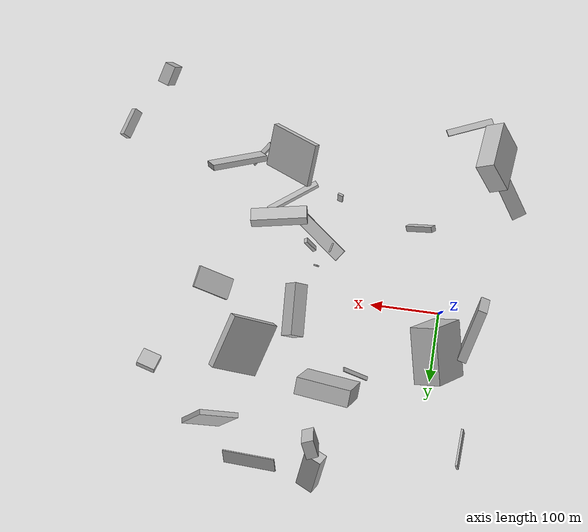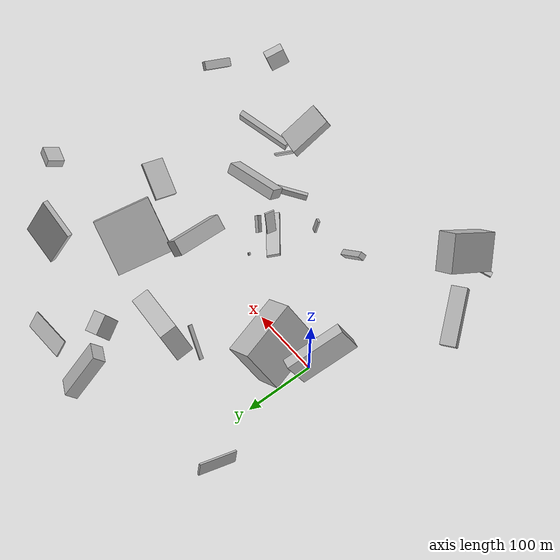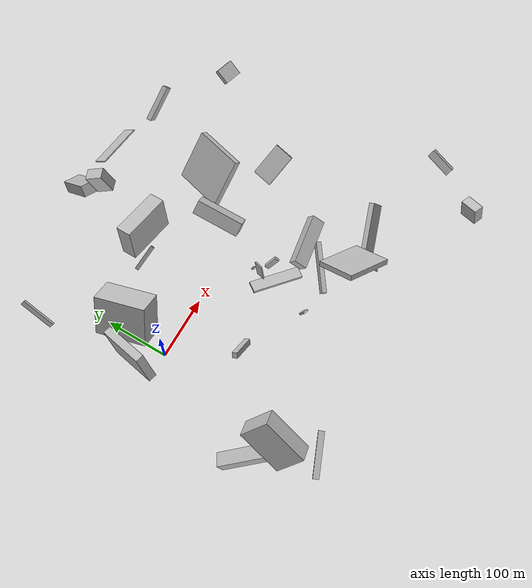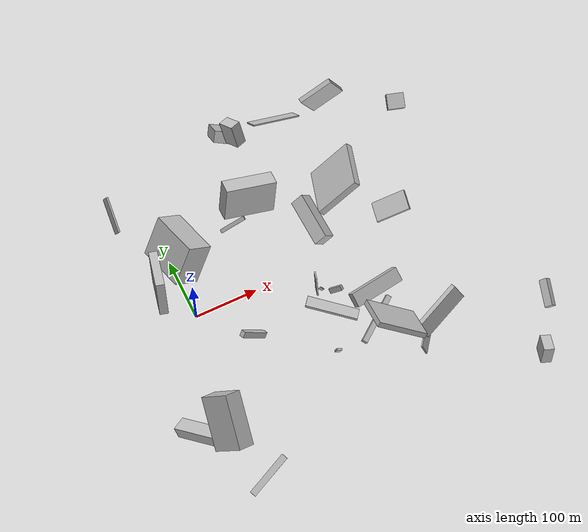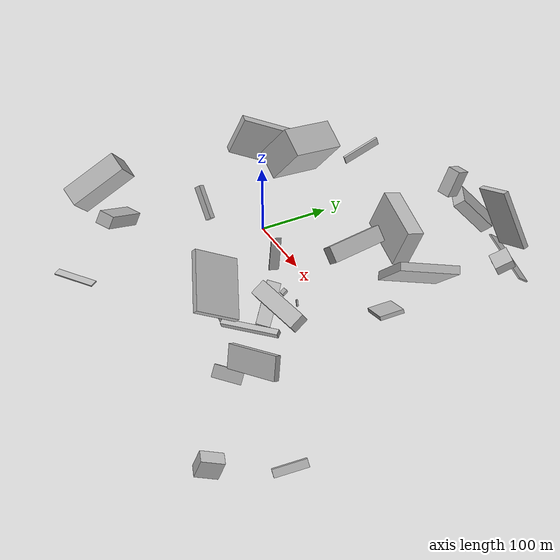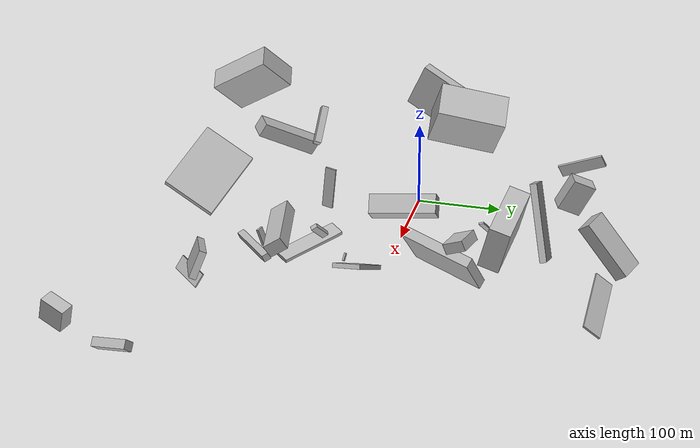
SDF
<sdf version="1.6">
 <world name="default">
  <scene>
   <sky><clouds><speed>12</speed></clouds></sky>
   <ambient>0.4 0.4 0.4 1</ambient>
   <background>0.7 0.7 0.7 1</background>
   <shadows>1</shadows>
  </scene>
  <gravity>0 0 -9.8066</gravity>
  <magnetic_field>6e-06 2.3e-05 -4.2e-05</magnetic_field>
  <physics default="0" name="default_physics" type="ode">
   <ode>
    <solver>
     <type>quick</type>
     <iters>10</iters>
     <sor>1.0</sor>
     <use_dynamic_moi_rescaling>0</use_dynamic_moi_rescaling>
    </solver>
    <constraints>
     <cfm>0</cfm>
     <erp>0.2</erp>
     <contact_max_correcting_vel>100</contact_max_correcting_vel>
     <contact_surface_layer>0.001</contact_surface_layer>
    </constraints>
   </ode>
   <max_step_size>0.004</max_step_size>
   <real_time_factor>1</real_time_factor>
   <real_time_update_rate>250</real_time_update_rate>
  </physics>
  <light name="sun" type="directional">
   <pose>0 0 10 0 0 0</pose>
   <diffuse>0.8 0.8 0.8 1</diffuse>
   <specular>0.2 0.2 0.2 1</specular>
   <attenuation>
    <range>1000</range>
    <constant>0.9</constant>
    <linear>0.01</linear>
    <quadratic>0.001</quadratic>
   </attenuation>
   <direction>-0.5 0.1 -0.9</direction>
  </light>
  <model name="building_1">
   <static>0</static>
   <pose>-46.80721612134095 10.588466715862722 92.22088988094995 -0.43987139113227713 0.026669228112669332 -0.24792264438074518</pose>
   <link name="link">
    <gravity>0</gravity>
    <pose>0 0 27.0 0 0 0</pose>
    <collision name="collision"><geometry><box><size>13 80 54</size></box></geometry></collision>
    <visual name="visual">
     <cast_shadows>0</cast_shadows>
     <geometry><box><size>13 80 54</size></box></geometry>
     <material>
      <script>
       <uri>model://HANNAS_wall/materials/scripts</uri>
       <uri>model://HANNAS_wall/materials/textures</uri>
       <name>vrc/HANNAS_wall</name>
      </script>
     </material>
    </visual>
   </link>
  </model>
  <model name="building_2">
   <static>0</static>
   <pose>142.31159038892437 251.97620054507857 50.635752170744944 -1.9255413461020572 -0.8690256944154202 -1.7264265356310464</pose>
   <link name="link">
    <gravity>0</gravity>
    <pose>0 0 13.5 0 0 0</pose>
    <collision name="collision"><geometry><box><size>71 18 27</size></box></geometry></collision>
    <visual name="visual">
     <cast_shadows>0</cast_shadows>
     <geometry><box><size>71 18 27</size></box></geometry>
     <material>
      <script>
       <uri>model://HANNAS_wall/materials/scripts</uri>
       <uri>model://HANNAS_wall/materials/textures</uri>
       <name>vrc/HANNAS_wall</name>
      </script>
     </material>
    </visual>
   </link>
  </model>
  <model name="building_3">
   <static>0</static>
   <pose>-57.79887685216417 -207.33828644951114 104.13392132256574 0.6542090987517558 0.5254659813759628 0.20850458514615336</pose>
   <link name="link">
    <gravity>0</gravity>
    <pose>0 0 26.0 0 0 0</pose>
    <collision name="collision"><geometry><box><size>27 80 52</size></box></geometry></collision>
    <visual name="visual">
     <cast_shadows>0</cast_shadows>
     <geometry><box><size>27 80 52</size></box></geometry>
     <material>
      <script>
       <uri>model://HANNAS_wall/materials/scripts</uri>
       <uri>model://HANNAS_wall/materials/textures</uri>
       <name>vrc/HANNAS_wall</name>
      </script>
     </material>
    </visual>
   </link>
  </model>
  <model name="building_4">
   <static>0</static>
   <pose>316.8078931884104 -172.51256144888418 61.405261625652244 1.1476230024784764 -0.2855874906496783 0.35964390490377746</pose>
   <link name="link">
    <gravity>0</gravity>
    <pose>0 0 4.0 0 0 0</pose>
    <collision name="collision"><geometry><box><size>80 31 8</size></box></geometry></collision>
    <visual name="visual">
     <cast_shadows>0</cast_shadows>
     <geometry><box><size>80 31 8</size></box></geometry>
     <material>
      <script>
       <uri>model://HANNAS_wall/materials/scripts</uri>
       <uri>model://HANNAS_wall/materials/textures</uri>
       <name>vrc/HANNAS_wall</name>
      </script>
     </material>
    </visual>
   </link>
  </model>
  <model name="building_5">
   <static>0</static>
   <pose>-5.066339286344846 96.37820893813016 108.68357692366286 1.2110102681719987 -0.9100155124347925 0.5088106340080577</pose>
   <link name="link">
    <gravity>0</gravity>
    <pose>0 0 40.0 0 0 0</pose>
    <collision name="collision"><geometry><box><size>64 41 80</size></box></geometry></collision>
    <visual name="visual">
     <cast_shadows>0</cast_shadows>
     <geometry><box><size>64 41 80</size></box></geometry>
     <material>
      <script>
       <uri>model://HANNAS_wall/materials/scripts</uri>
       <uri>model://HANNAS_wall/materials/textures</uri>
       <name>vrc/HANNAS_wall</name>
      </script>
     </material>
    </visual>
   </link>
  </model>
  <model name="building_6">
   <static>0</static>
   <pose>246.05078455840516 -100.04797789841032 66.17554096737271 -0.5837933246982844 -0.0746034739771885 -2.966680083458404</pose>
   <link name="link">
    <gravity>0</gravity>
    <pose>0 0 7.5 0 0 0</pose>
    <collision name="collision"><geometry><box><size>80 22 15</size></box></geometry></collision>
    <visual name="visual">
     <cast_shadows>0</cast_shadows>
     <geometry><box><size>80 22 15</size></box></geometry>
     <material>
      <script>
       <uri>model://HANNAS_wall/materials/scripts</uri>
       <uri>model://HANNAS_wall/materials/textures</uri>
       <name>vrc/HANNAS_wall</name>
      </script>
     </material>
    </visual>
   </link>
  </model>
  <model name="building_7">
   <static>0</static>
   <pose>328.87745482677224 18.039925181907453 82.87695471194493 1.7232631047173461 -0.4511385530592684 -0.2373014897774044</pose>
   <link name="link">
    <gravity>0</gravity>
    <pose>0 0 15.5 0 0 0</pose>
    <collision name="collision"><geometry><box><size>54 5 31</size></box></geometry></collision>
    <visual name="visual">
     <cast_shadows>0</cast_shadows>
     <geometry><box><size>54 5 31</size></box></geometry>
     <material>
      <script>
       <uri>model://HANNAS_wall/materials/scripts</uri>
       <uri>model://HANNAS_wall/materials/textures</uri>
       <name>vrc/HANNAS_wall</name>
      </script>
     </material>
    </visual>
   </link>
  </model>
  <model name="building_8">
   <static>0</static>
   <pose>247.04402131850247 238.51956905938542 30.109641318971057 2.295971402490959 -0.29654122966167695 3.110433619250768</pose>
   <link name="link">
    <gravity>0</gravity>
    <pose>0 0 11.5 0 0 0</pose>
    <collision name="collision"><geometry><box><size>80 2 23</size></box></geometry></collision>
    <visual name="visual">
     <cast_shadows>0</cast_shadows>
     <geometry><box><size>80 2 23</size></box></geometry>
     <material>
      <script>
       <uri>model://HANNAS_wall/materials/scripts</uri>
       <uri>model://HANNAS_wall/materials/textures</uri>
       <name>vrc/HANNAS_wall</name>
      </script>
     </material>
    </visual>
   </link>
  </model>
  <model name="building_9">
   <static>0</static>
   <pose>-65.68176808293673 -181.11129000880922 33.12075731304242 1.2309533929170797 1.041602355967249 -1.3080577364899955</pose>
   <link name="link">
    <gravity>0</gravity>
    <pose>0 0 11.0 0 0 0</pose>
    <collision name="collision"><geometry><box><size>18 80 22</size></box></geometry></collision>
    <visual name="visual">
     <cast_shadows>0</cast_shadows>
     <geometry><box><size>18 80 22</size></box></geometry>
     <material>
      <script>
       <uri>model://HANNAS_wall/materials/scripts</uri>
       <uri>model://HANNAS_wall/materials/textures</uri>
       <name>vrc/HANNAS_wall</name>
      </script>
     </material>
    </visual>
   </link>
  </model>
  <model name="building_10">
   <static>0</static>
   <pose>161.10101889698583 -147.77308781394527 16.45962884631545 1.982196891521223 1.2431583295341242 1.6237564176466603</pose>
   <link name="link">
    <gravity>0</gravity>
    <pose>0 0 4.0 0 0 0</pose>
    <collision name="collision"><geometry><box><size>20 3 8</size></box></geometry></collision>
    <visual name="visual">
     <cast_shadows>0</cast_shadows>
     <geometry><box><size>20 3 8</size></box></geometry>
     <material>
      <script>
       <uri>model://HANNAS_wall/materials/scripts</uri>
       <uri>model://HANNAS_wall/materials/textures</uri>
       <name>vrc/HANNAS_wall</name>
      </script>
     </material>
    </visual>
   </link>
  </model>
  <model name="building_11">
   <static>0</static>
   <pose>198.5870796568022 26.69731536258423 89.3029721782046 0.15196664321596404 0.8655551245087347 0.16730386341383394</pose>
   <link name="link">
    <gravity>0</gravity>
    <pose>0 0 11.0 0 0 0</pose>
    <collision name="collision"><geometry><box><size>22 74 22</size></box></geometry></collision>
    <visual name="visual">
     <cast_shadows>0</cast_shadows>
     <geometry><box><size>22 74 22</size></box></geometry>
     <material>
      <script>
       <uri>model://HANNAS_wall/materials/scripts</uri>
       <uri>model://HANNAS_wall/materials/textures</uri>
       <name>vrc/HANNAS_wall</name>
      </script>
     </material>
    </visual>
   </link>
  </model>
  <model name="building_12">
   <static>0</static>
   <pose>-54.306405719378574 192.70829339785587 38.09220718453941 0.2875720602153393 -0.38816152536484055 1.4890608982021234</pose>
   <link name="link">
    <gravity>0</gravity>
    <pose>0 0 8.0 0 0 0</pose>
    <collision name="collision"><geometry><box><size>56 3 16</size></box></geometry></collision>
    <visual name="visual">
     <cast_shadows>0</cast_shadows>
     <geometry><box><size>56 3 16</size></box></geometry>
     <material>
      <script>
       <uri>model://HANNAS_wall/materials/scripts</uri>
       <uri>model://HANNAS_wall/materials/textures</uri>
       <name>vrc/HANNAS_wall</name>
      </script>
     </material>
    </visual>
   </link>
  </model>
  <model name="building_13">
   <static>0</static>
   <pose>109.4490291292752 100.57884778326897 28.608127708474065 -1.1418060829561307 -0.6938429693731477 -0.2476260368258135</pose>
   <link name="link">
    <gravity>0</gravity>
    <pose>0 0 3.0 0 0 0</pose>
    <collision name="collision"><geometry><box><size>48 2 6</size></box></geometry></collision>
    <visual name="visual">
     <cast_shadows>0</cast_shadows>
     <geometry><box><size>48 2 6</size></box></geometry>
     <material>
      <script>
       <uri>model://HANNAS_wall/materials/scripts</uri>
       <uri>model://HANNAS_wall/materials/textures</uri>
       <name>vrc/HANNAS_wall</name>
      </script>
     </material>
    </visual>
   </link>
  </model>
  <model name="building_14">
   <static>0</static>
   <pose>169.38872802934813 -61.86798264336912 88.4431988284243 -0.265693828638341 -1.4807381912500408 1.5864957661809933</pose>
   <link name="link">
    <gravity>0</gravity>
    <pose>0 0 6.5 0 0 0</pose>
    <collision name="collision"><geometry><box><size>48 2 13</size></box></geometry></collision>
    <visual name="visual">
     <cast_shadows>0</cast_shadows>
     <geometry><box><size>48 2 13</size></box></geometry>
     <material>
      <script>
       <uri>model://HANNAS_wall/materials/scripts</uri>
       <uri>model://HANNAS_wall/materials/textures</uri>
       <name>vrc/HANNAS_wall</name>
      </script>
     </material>
    </visual>
   </link>
  </model>
  <model name="building_15">
   <static>0</static>
   <pose>315.0087030404442 198.1852875522726 107.09452630076984 0.2145039341327754 -0.389175598924471 0.02817129921107881</pose>
   <link name="link">
    <gravity>0</gravity>
    <pose>0 0 40.0 0 0 0</pose>
    <collision name="collision"><geometry><box><size>54 7 80</size></box></geometry></collision>
    <visual name="visual">
     <cast_shadows>0</cast_shadows>
     <geometry><box><size>54 7 80</size></box></geometry>
     <material>
      <script>
       <uri>model://HANNAS_wall/materials/scripts</uri>
       <uri>model://HANNAS_wall/materials/textures</uri>
       <name>vrc/HANNAS_wall</name>
      </script>
     </material>
    </visual>
   </link>
  </model>
  <model name="building_16">
   <static>0</static>
   <pose>285.4251701186223 -195.40822639738442 27.082053795627278 0.45162062557798116 -1.0114594500644098 2.1131398708314197</pose>
   <link name="link">
    <gravity>0</gravity>
    <pose>0 0 1.0 0 0 0</pose>
    <collision name="collision"><geometry><box><size>17 38 2</size></box></geometry></collision>
    <visual name="visual">
     <cast_shadows>0</cast_shadows>
     <geometry><box><size>17 38 2</size></box></geometry>
     <material>
      <script>
       <uri>model://HANNAS_wall/materials/scripts</uri>
       <uri>model://HANNAS_wall/materials/textures</uri>
       <name>vrc/HANNAS_wall</name>
      </script>
     </material>
    </visual>
   </link>
  </model>
  <model name="building_17">
   <static>0</static>
   <pose>188.1590531749577 -46.0608071503552 14.59550738374677 -3.0650128137820927 -0.9827622856276483 2.8715032518318524</pose>
   <link name="link">
    <gravity>0</gravity>
    <pose>0 0 2.0 0 0 0</pose>
    <collision name="collision"><geometry><box><size>9 2 4</size></box></geometry></collision>
    <visual name="visual">
     <cast_shadows>0</cast_shadows>
     <geometry><box><size>9 2 4</size></box></geometry>
     <material>
      <script>
       <uri>model://HANNAS_wall/materials/scripts</uri>
       <uri>model://HANNAS_wall/materials/textures</uri>
       <name>vrc/HANNAS_wall</name>
      </script>
     </material>
    </visual>
   </link>
  </model>
  <model name="building_18">
   <static>0</static>
   <pose>244.0098052331312 86.40032661264475 46.25220389610906 0.3094979984580273 -0.7594636554641179 2.629652025995834</pose>
   <link name="link">
    <gravity>0</gravity>
    <pose>0 0 40.0 0 0 0</pose>
    <collision name="collision"><geometry><box><size>11 80 80</size></box></geometry></collision>
    <visual name="visual">
     <cast_shadows>0</cast_shadows>
     <geometry><box><size>11 80 80</size></box></geometry>
     <material>
      <script>
       <uri>model://HANNAS_wall/materials/scripts</uri>
       <uri>model://HANNAS_wall/materials/textures</uri>
       <name>vrc/HANNAS_wall</name>
      </script>
     </material>
    </visual>
   </link>
  </model>
  <model name="building_19">
   <static>0</static>
   <pose>161.166003205237 198.46245415563155 93.17839706314203 -0.15186290022803442 -0.449512665812261 -1.1300960574011463</pose>
   <link name="link">
    <gravity>0</gravity>
    <pose>0 0 18.5 0 0 0</pose>
    <collision name="collision"><geometry><box><size>27 17 37</size></box></geometry></collision>
    <visual name="visual">
     <cast_shadows>0</cast_shadows>
     <geometry><box><size>27 17 37</size></box></geometry>
     <material>
      <script>
       <uri>model://HANNAS_wall/materials/scripts</uri>
       <uri>model://HANNAS_wall/materials/textures</uri>
       <name>vrc/HANNAS_wall</name>
      </script>
     </material>
    </visual>
   </link>
  </model>
  <model name="building_20">
   <static>0</static>
   <pose>476.23030688866544 -212.2876991472562 47.41399797616881 2.4461292883842938 -0.19621960988816178 1.3089439393784532</pose>
   <link name="link">
    <gravity>0</gravity>
    <pose>0 0 5.0 0 0 0</pose>
    <collision name="collision"><geometry><box><size>42 13 10</size></box></geometry></collision>
    <visual name="visual">
     <cast_shadows>0</cast_shadows>
     <geometry><box><size>42 13 10</size></box></geometry>
     <material>
      <script>
       <uri>model://HANNAS_wall/materials/scripts</uri>
       <uri>model://HANNAS_wall/materials/textures</uri>
       <name>vrc/HANNAS_wall</name>
      </script>
     </material>
    </visual>
   </link>
  </model>
  <model name="building_21">
   <static>0</static>
   <pose>268.90174435170127 -200.25246694725143 107.6732009292337 0.7587010808469492 0.781795255598503 -2.6492630361890885</pose>
   <link name="link">
    <gravity>0</gravity>
    <pose>0 0 40.0 0 0 0</pose>
    <collision name="collision"><geometry><box><size>8 61 80</size></box></geometry></collision>
    <visual name="visual">
     <cast_shadows>0</cast_shadows>
     <geometry><box><size>8 61 80</size></box></geometry>
     <material>
      <script>
       <uri>model://HANNAS_wall/materials/scripts</uri>
       <uri>model://HANNAS_wall/materials/textures</uri>
       <name>vrc/HANNAS_wall</name>
      </script>
     </material>
    </visual>
   </link>
  </model>
  <model name="building_22">
   <static>0</static>
   <pose>147.55178403296856 140.34700461515692 47.164159604912236 -0.6646212474943715 1.225941114711113 -2.323930491234635</pose>
   <link name="link">
    <gravity>0</gravity>
    <pose>0 0 12.5 0 0 0</pose>
    <collision name="collision"><geometry><box><size>57 80 25</size></box></geometry></collision>
    <visual name="visual">
     <cast_shadows>0</cast_shadows>
     <geometry><box><size>57 80 25</size></box></geometry>
     <material>
      <script>
       <uri>model://HANNAS_wall/materials/scripts</uri>
       <uri>model://HANNAS_wall/materials/textures</uri>
       <name>vrc/HANNAS_wall</name>
      </script>
     </material>
    </visual>
   </link>
  </model>
  <model name="building_23">
   <static>0</static>
   <pose>46.21725994956027 -106.21782020718587 108.00920964820584 1.1079880178440584 -0.6996772417689966 0.6429578316801885</pose>
   <link name="link">
    <gravity>0</gravity>
    <pose>0 0 4.0 0 0 0</pose>
    <collision name="collision"><geometry><box><size>9 46 8</size></box></geometry></collision>
    <visual name="visual">
     <cast_shadows>0</cast_shadows>
     <geometry><box><size>9 46 8</size></box></geometry>
     <material>
      <script>
       <uri>model://HANNAS_wall/materials/scripts</uri>
       <uri>model://HANNAS_wall/materials/textures</uri>
       <name>vrc/HANNAS_wall</name>
      </script>
     </material>
    </visual>
   </link>
  </model>
  <model name="building_24">
   <static>0</static>
   <pose>191.52493490097714 -66.95797800099561 41.61284541431624 -0.7072736484317911 -0.4621004290789801 -2.636532743842527</pose>
   <link name="link">
    <gravity>0</gravity>
    <pose>0 0 11.5 0 0 0</pose>
    <collision name="collision"><geometry><box><size>5 8 23</size></box></geometry></collision>
    <visual name="visual">
     <cast_shadows>0</cast_shadows>
     <geometry><box><size>5 8 23</size></box></geometry>
     <material>
      <script>
       <uri>model://HANNAS_wall/materials/scripts</uri>
       <uri>model://HANNAS_wall/materials/textures</uri>
       <name>vrc/HANNAS_wall</name>
      </script>
     </material>
    </visual>
   </link>
  </model>
  <model name="building_25">
   <static>0</static>
   <pose>21.50070470105033 -264.58514306547045 12.681483062432022 -1.754515861280519 -0.2150953600310537 2.0242965110207676</pose>
   <link name="link">
    <gravity>0</gravity>
    <pose>0 0 36.0 0 0 0</pose>
    <collision name="collision"><geometry><box><size>10 2 72</size></box></geometry></collision>
    <visual name="visual">
     <cast_shadows>0</cast_shadows>
     <geometry><box><size>10 2 72</size></box></geometry>
     <material>
      <script>
       <uri>model://HANNAS_wall/materials/scripts</uri>
       <uri>model://HANNAS_wall/materials/textures</uri>
       <name>vrc/HANNAS_wall</name>
      </script>
     </material>
    </visual>
   </link>
  </model>
  <model name="building_26">
   <static>0</static>
   <pose>215.86993302091514 -111.80483997099093 20.11873073458692 -1.0449917482284383 -1.298238396070787 0.3930335414717486</pose>
   <link name="link">
    <gravity>0</gravity>
    <pose>0 0 40.0 0 0 0</pose>
    <collision name="collision"><geometry><box><size>4 19 80</size></box></geometry></collision>
    <visual name="visual">
     <cast_shadows>0</cast_shadows>
     <geometry><box><size>4 19 80</size></box></geometry>
     <material>
      <script>
       <uri>model://HANNAS_wall/materials/scripts</uri>
       <uri>model://HANNAS_wall/materials/textures</uri>
       <name>vrc/HANNAS_wall</name>
      </script>
     </material>
    </visual>
   </link>
  </model>
  <model name="building_27">
   <static>0</static>
   <pose>201.0133189359895 -161.6836751430808 35.501809416395915 1.4539096937000875 -0.37398722234203735 2.2570409481161833</pose>
   <link name="link">
    <gravity>0</gravity>
    <pose>0 0 40.0 0 0 0</pose>
    <collision name="collision"><geometry><box><size>8 8 80</size></box></geometry></collision>
    <visual name="visual">
     <cast_shadows>0</cast_shadows>
     <geometry><box><size>8 8 80</size></box></geometry>
     <material>
      <script>
       <uri>model://HANNAS_wall/materials/scripts</uri>
       <uri>model://HANNAS_wall/materials/textures</uri>
       <name>vrc/HANNAS_wall</name>
      </script>
     </material>
    </visual>
   </link>
  </model>
  <model name="building_28">
   <static>0</static>
   <pose>437.6231925158804 -278.48257633445206 40.448969844709566 1.2528412926082961 0.1487345554577287 -0.3555326392328661</pose>
   <link name="link">
    <gravity>0</gravity>
    <pose>0 0 14.5 0 0 0</pose>
    <collision name="collision"><geometry><box><size>16 28 29</size></box></geometry></collision>
    <visual name="visual">
     <cast_shadows>0</cast_shadows>
     <geometry><box><size>16 28 29</size></box></geometry>
     <material>
      <script>
       <uri>model://HANNAS_wall/materials/scripts</uri>
       <uri>model://HANNAS_wall/materials/textures</uri>
       <name>vrc/HANNAS_wall</name>
      </script>
     </material>
    </visual>
   </link>
  </model>
  <model name="building_29">
   <static>0</static>
   <pose>392.0867180242942 125.1627169054434 152.30390924399907 0.426127967752779 0.03476454204045422 -0.2821194758683109</pose>
   <link name="link">
    <gravity>0</gravity>
    <pose>0 0 5.5 0 0 0</pose>
    <collision name="collision"><geometry><box><size>26 23 11</size></box></geometry></collision>
    <visual name="visual">
     <cast_shadows>0</cast_shadows>
     <geometry><box><size>26 23 11</size></box></geometry>
     <material>
      <script>
       <uri>model://HANNAS_wall/materials/scripts</uri>
       <uri>model://HANNAS_wall/materials/textures</uri>
       <name>vrc/HANNAS_wall</name>
      </script>
     </material>
    </visual>
   </link>
  </model>
 </world>
</sdf>
